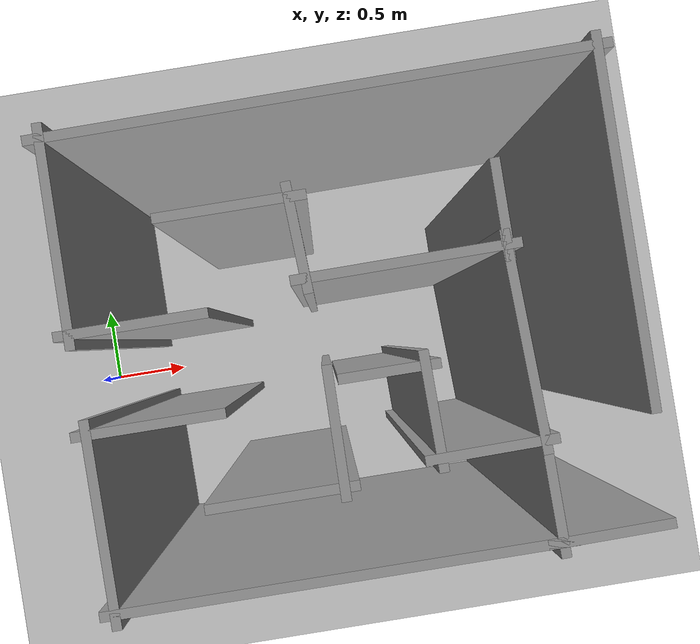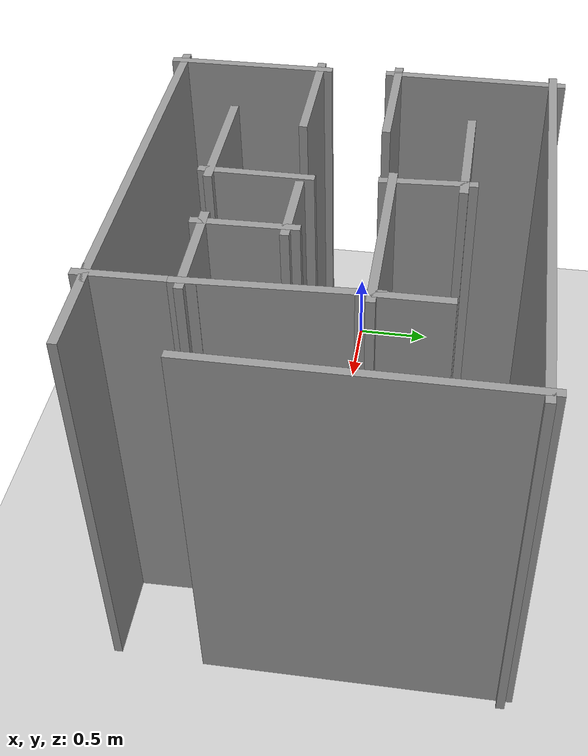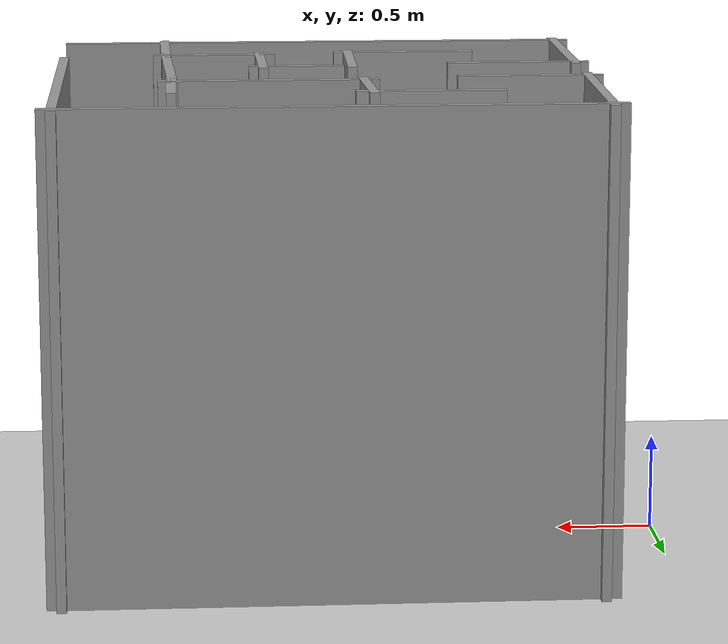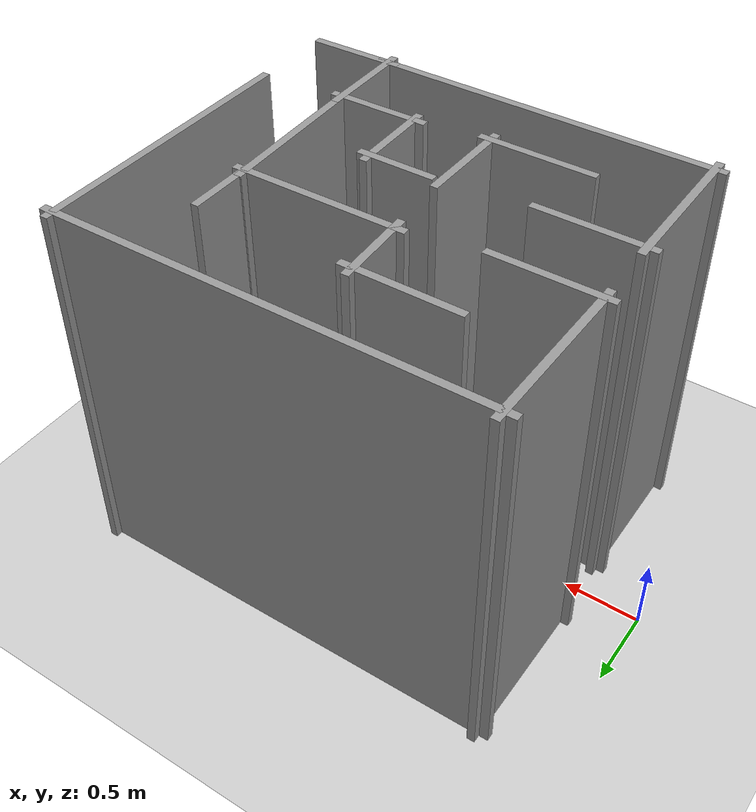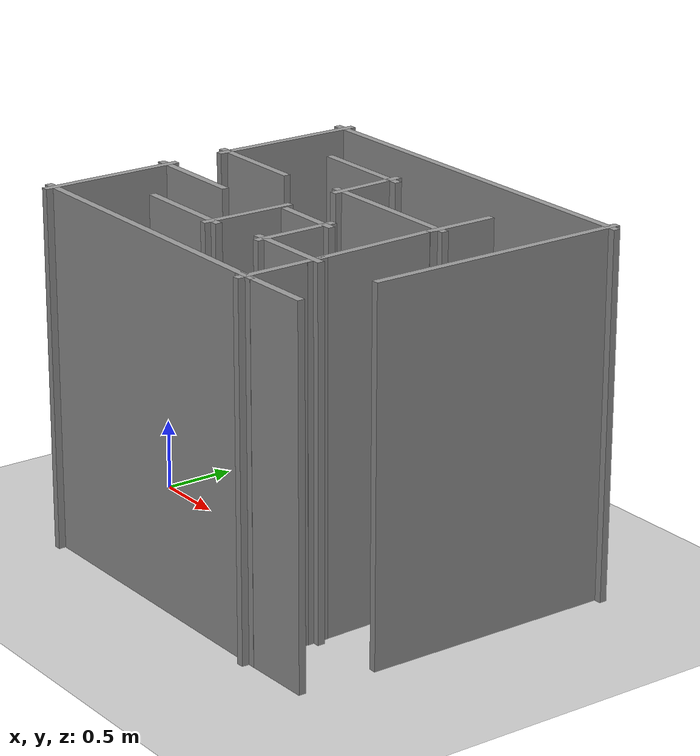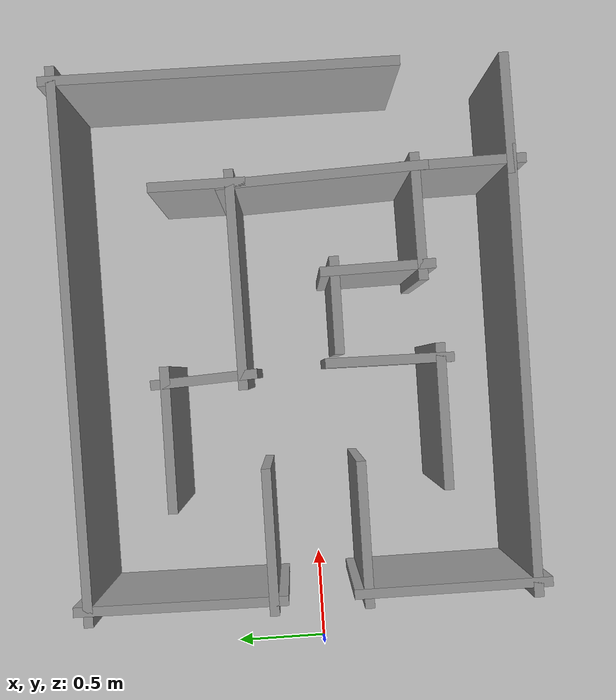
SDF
<sdf version="1.7">
 <world name="default">
  <scene><ambient>0.4 0.4 0.4 1</ambient><background>0.7 0.7 0.7 1</background><shadows>1</shadows></scene>
  <light name="sun" type="directional">
   <pose>0 0 10 0 -0 0</pose>
   <diffuse>0.8 0.8 0.8 1</diffuse>
   <specular>0.2 0.2 0.2 1</specular>
   <attenuation>
    <range>1000</range>
    <constant>0.9</constant>
    <linear>0.01</linear>
    <quadratic>0.001</quadratic>
   </attenuation>
   <direction>-0.5 0.1 -0.9</direction>
   <spot><inner_angle>0</inner_angle><outer_angle>0</outer_angle><falloff>0</falloff></spot>
  </light>
  <model name="ground_plane">
   <static>1</static>
   <link name="link">
    <collision name="collision">
     <geometry><plane><normal>0 0 1</normal><size>100 100</size></plane></geometry>
     <surface>
      <contact><collide_bitmask>65535</collide_bitmask></contact>
      <friction><ode><mu>100</mu><mu2>50</mu2></ode></friction>
     </surface>
    </collision>
    <visual name="visual">
     <cast_shadows>0</cast_shadows>
     <geometry><plane><normal>0 0 1</normal><size>100 100</size></plane></geometry>
     <material>
      <script><uri>file://media/materials/scripts/gazebo.material</uri><name>Gazebo/Grey</name></script>
     </material>
    </visual>
   </link>
  </model>
  <physics type="ode">
   <real_time_update_rate>1000</real_time_update_rate>
   <max_step_size>0.001</max_step_size>
   <real_time_factor>1</real_time_factor>
   <ode>
    <solver>
     <type>quick</type>
     <iters>150</iters>
     <precon_iters>0</precon_iters>
     <sor>1.4</sor>
     <use_dynamic_moi_rescaling>1</use_dynamic_moi_rescaling>
    </solver>
    <constraints>
     <cfm>1e-05</cfm>
     <erp>0.2</erp>
     <contact_max_correcting_vel>2000</contact_max_correcting_vel>
     <contact_surface_layer>0.01</contact_surface_layer>
    </constraints>
   </ode>
  </physics>
  <gravity>0 0 -9.8</gravity>
  <magnetic_field>6e-06 2.3e-05 -4.2e-05</magnetic_field>
  <atmosphere type="adiabatic"/>
  <spherical_coordinates>
   <surface_model>EARTH_WGS84</surface_model>
   <latitude_deg>0</latitude_deg>
   <longitude_deg>0</longitude_deg>
   <elevation>0</elevation>
   <heading_deg>0</heading_deg>
  </spherical_coordinates>
  <model name="Labyrinthe">
   <pose>1.44414 0.063318 0 0 -0 0</pose>
   <link name="Wall_44">
    <collision name="Wall_44_Collision">
     <geometry><box><size>0.75 0.05 2.5</size></box></geometry>
     <pose>0 0 1.25 0 -0 0</pose>
    </collision>
    <visual name="Wall_44_Visual">
     <pose>0 0 1.25 0 -0 0</pose>
     <geometry><box><size>0.75 0.05 2.5</size></box></geometry>
     <material>
      <script><uri>file://media/materials/scripts/gazebo.material</uri><name>Gazebo/Grey</name></script>
      <ambient>1 1 1 1</ambient>
     </material>
     <meta><layer>0</layer></meta>
    </visual>
    <pose>-0.18283 0.672913 0 0 -0 0</pose>
   </link>
   <link name="Wall_45">
    <collision name="Wall_45_Collision">
     <geometry><box><size>0.546517 0.05 2.5</size></box></geometry>
     <pose>0 0 1.25 0 -0 0</pose>
    </collision>
    <visual name="Wall_45_Visual">
     <pose>0 0 1.25 0 -0 0</pose>
     <geometry><box><size>0.546517 0.05 2.5</size></box></geometry>
     <material>
      <script><uri>file://media/materials/scripts/gazebo.material</uri><name>Gazebo/Grey</name></script>
      <ambient>1 1 1 1</ambient>
     </material>
     <meta><layer>0</layer></meta>
    </visual>
    <pose>0.113882 0.4749 0 0 -0 -1.52103</pose>
   </link>
   <link name="Wall_49">
    <collision name="Wall_49_Collision">
     <geometry><box><size>1.12495 0.05 2.5</size></box></geometry>
     <pose>0 0 1.25 0 -0 0</pose>
    </collision>
    <visual name="Wall_49_Visual">
     <pose>0 0 1.25 0 -0 0</pose>
     <geometry><box><size>1.12495 0.05 2.5</size></box></geometry>
     <material>
      <script><uri>file://media/materials/scripts/gazebo.material</uri><name>Gazebo/Grey</name></script>
      <ambient>1 1 1 1</ambient>
     </material>
     <meta><layer>0</layer></meta>
    </visual>
    <pose>0.611209 0.280174 0 0 -0 0.006744</pose>
   </link>
   <link name="Wall_50">
    <collision name="Wall_50_Collision">
     <geometry><box><size>1.09263 0.05 2.5</size></box></geometry>
     <pose>0 0 1.25 0 -0 0</pose>
    </collision>
    <visual name="Wall_50_Visual">
     <pose>0 0 1.25 0 -0 0</pose>
     <geometry><box><size>1.09263 0.05 2.5</size></box></geometry>
     <material>
      <script><uri>file://media/materials/scripts/gazebo.material</uri><name>Gazebo/Grey</name></script>
      <ambient>1 1 1 1</ambient>
     </material>
     <meta><layer>0</layer></meta>
    </visual>
    <pose>1.11511 -0.187564 0 0 -0 -1.53591</pose>
   </link>
   <link name="Wall_51">
    <collision name="Wall_51_Collision">
     <geometry><box><size>0.651272 0.05 2.5</size></box></geometry>
     <pose>0 0 1.25 0 -0 0</pose>
    </collision>
    <visual name="Wall_51_Visual">
     <pose>0 0 1.25 0 -0 0</pose>
     <geometry><box><size>0.651272 0.05 2.5</size></box></geometry>
     <material>
      <script><uri>file://media/materials/scripts/gazebo.material</uri><name>Gazebo/Grey</name></script>
      <ambient>1 1 1 1</ambient>
     </material>
     <meta><layer>0</layer></meta>
    </visual>
    <pose>0.874359 -0.668453 0 0 -0 -3.12847</pose>
   </link>
   <link name="Wall_52">
    <collision name="Wall_52_Collision">
     <geometry><box><size>0.592101 0.05 2.5</size></box></geometry>
     <pose>0 0 1.25 0 -0 0</pose>
    </collision>
    <visual name="Wall_52_Visual">
     <pose>0 0 1.25 0 -0 0</pose>
     <geometry><box><size>0.592101 0.05 2.5</size></box></geometry>
     <material>
      <script><uri>file://media/materials/scripts/gazebo.material</uri><name>Gazebo/Grey</name></script>
      <ambient>1 1 1 1</ambient>
     </material>
     <meta><layer>0</layer></meta>
    </visual>
    <pose>0.627033 -0.444139 0 0 -0 1.58567</pose>
   </link>
   <link name="Wall_53">
    <collision name="Wall_53_Collision">
     <geometry><box><size>0.5 0.05 2.5</size></box></geometry>
     <pose>0 0 1.25 0 -0 0</pose>
    </collision>
    <visual name="Wall_53_Visual">
     <pose>0 0 1.25 0 -0 0</pose>
     <geometry><box><size>0.5 0.05 2.5</size></box></geometry>
     <material>
      <script><uri>file://media/materials/scripts/gazebo.material</uri><name>Gazebo/Grey</name></script>
      <ambient>1 1 1 1</ambient>
     </material>
     <meta><layer>0</layer></meta>
    </visual>
    <pose>0.448745 -0.223113 0 0 -0 3.14159</pose>
   </link>
   <link name="Wall_56">
    <collision name="Wall_56_Collision">
     <geometry><box><size>0.657543 0.05 2.5</size></box></geometry>
     <pose>0 0 1.25 0 -0 0</pose>
    </collision>
    <visual name="Wall_56_Visual">
     <pose>0 0 1.25 0 -0 0</pose>
     <geometry><box><size>0.657543 0.05 2.5</size></box></geometry>
     <material>
      <script><uri>file://media/materials/scripts/gazebo.material</uri><name>Gazebo/Grey</name></script>
      <ambient>1 1 1 1</ambient>
     </material>
     <meta><layer>0</layer></meta>
    </visual>
    <pose>0.15369 -0.474554 0 0 -0 1.56044</pose>
   </link>
   <link name="Wall_58">
    <collision name="Wall_58_Collision">
     <geometry><box><size>0.75 0.05 2.5</size></box></geometry>
     <pose>0 0 1.25 0 -0 0</pose>
    </collision>
    <visual name="Wall_58_Visual">
     <pose>0 0 1.25 0 -0 0</pose>
     <geometry><box><size>0.75 0.05 2.5</size></box></geometry>
     <material>
      <script><uri>file://media/materials/scripts/gazebo.material</uri><name>Gazebo/Grey</name></script>
      <ambient>1 1 1 1</ambient>
     </material>
     <meta><layer>0</layer></meta>
    </visual>
    <pose>-0.148938 -0.734887 0 0 -0 3.14159</pose>
   </link>
   <link name="Wall_62">
    <collision name="Wall_62_Collision">
     <geometry><box><size>0.5 0.05 2.5</size></box></geometry>
     <pose>0 0 1.25 0 -0 0</pose>
    </collision>
    <visual name="Wall_62_Visual">
     <pose>0 0 1.25 0 -0 0</pose>
     <geometry><box><size>0.5 0.05 2.5</size></box></geometry>
     <material>
      <script><uri>file://media/materials/scripts/gazebo.material</uri><name>Gazebo/Grey</name></script>
      <ambient>1 1 1 1</ambient>
     </material>
     <meta><layer>0</layer></meta>
    </visual>
    <pose>1.10525 0.451887 0 0 -0 1.5708</pose>
   </link>
   <link name="Wall_64">
    <collision name="Wall_64_Collision">
     <geometry><box><size>0.648486 0.05 2.5</size></box></geometry>
     <pose>0 0 1.25 0 -0 0</pose>
    </collision>
    <visual name="Wall_64_Visual">
     <pose>0 0 1.25 0 -0 0</pose>
     <geometry><box><size>0.648486 0.05 2.5</size></box></geometry>
     <material>
      <script><uri>file://media/materials/scripts/gazebo.material</uri><name>Gazebo/Grey</name></script>
      <ambient>1 1 1 1</ambient>
     </material>
     <meta><layer>0</layer></meta>
    </visual>
    <pose>1.13467 -0.907814 0 0 -0 -1.55828</pose>
   </link>
   <link name="Wall_66">
    <collision name="Wall_66_Collision">
     <geometry><box><size>1.84864 0.05 2.5</size></box></geometry>
     <pose>0 0 1.25 0 -0 0</pose>
    </collision>
    <visual name="Wall_66_Visual">
     <pose>0 0 1.25 0 -0 0</pose>
     <geometry><box><size>1.84864 0.05 2.5</size></box></geometry>
     <material>
      <script><uri>file://media/materials/scripts/gazebo.material</uri><name>Gazebo/Grey</name></script>
      <ambient>1 1 1 1</ambient>
     </material>
     <meta><layer>0</layer></meta>
    </visual>
    <pose>1.67475 0.301653 0 0 -0 -1.57467</pose>
   </link>
   <link name="Wall_68">
    <collision name="Wall_68_Collision">
     <geometry><box><size>0.616883 0.05 2.5</size></box></geometry>
     <pose>0 0 1.25 0 -0 0</pose>
    </collision>
    <visual name="Wall_68_Visual">
     <pose>0 0 1.25 0 -0 0</pose>
     <geometry><box><size>0.616883 0.05 2.5</size></box></geometry>
     <material>
      <script><uri>file://media/materials/scripts/gazebo.material</uri><name>Gazebo/Grey</name></script>
      <ambient>1 1 1 1</ambient>
     </material>
     <meta><layer>0</layer></meta>
    </visual>
    <pose>1.37121 -1.15375 0 0 -0 0.014084</pose>
   </link>
   <link name="Wall_75">
    <collision name="Wall_75_Collision">
     <geometry><box><size>2.30937 0.05 2.5</size></box></geometry>
     <pose>0 0 1.25 0 -0 0</pose>
    </collision>
    <visual name="Wall_75_Visual">
     <pose>0 0 1.25 0 -0 0</pose>
     <geometry><box><size>2.30937 0.05 2.5</size></box></geometry>
     <material>
      <script><uri>file://media/materials/scripts/gazebo.material</uri><name>Gazebo/Grey</name></script>
      <ambient>1 1 1 1</ambient>
     </material>
     <meta><layer>0</layer></meta>
    </visual>
    <pose>0.058105 -1.15698 0 0 -0 -5e-05</pose>
   </link>
   <link name="Wall_81">
    <collision name="Wall_81_Collision">
     <geometry><box><size>2.86185 0.05 2.5</size></box></geometry>
     <pose>0 0 1.25 0 -0 0</pose>
    </collision>
    <visual name="Wall_81_Visual">
     <pose>0 0 1.25 0 -0 0</pose>
     <geometry><box><size>2.86185 0.05 2.5</size></box></geometry>
     <material>
      <script><uri>file://media/materials/scripts/gazebo.material</uri><name>Gazebo/Grey</name></script>
      <ambient>1 1 1 1</ambient>
     </material>
     <meta><layer>0</layer></meta>
    </visual>
    <pose>0.322147 1.14768 0 0 -0 -3.13432</pose>
   </link>
   <link name="Wall_82">
    <collision name="Wall_82_Collision">
     <geometry><box><size>1.09883 0.05 2.5</size></box></geometry>
     <pose>0 0 1.25 0 -0 0</pose>
    </collision>
    <visual name="Wall_82_Visual">
     <pose>0 0 1.25 0 -0 0</pose>
     <geometry><box><size>1.09883 0.05 2.5</size></box></geometry>
     <material>
      <script><uri>file://media/materials/scripts/gazebo.material</uri><name>Gazebo/Grey</name></script>
      <ambient>1 1 1 1</ambient>
     </material>
     <meta><layer>0</layer></meta>
    </visual>
    <pose>-1.03045 0.663503 0 0 -0 -1.57773</pose>
   </link>
   <link name="Wall_83">
    <collision name="Wall_83_Collision">
     <geometry><box><size>0.75 0.05 2.5</size></box></geometry>
     <pose>0 0 1.25 0 -0 0</pose>
    </collision>
    <visual name="Wall_83_Visual">
     <pose>0 0 1.25 0 -0 0</pose>
     <geometry><box><size>0.75 0.05 2.5</size></box></geometry>
     <material>
      <script><uri>file://media/materials/scripts/gazebo.material</uri><name>Gazebo/Grey</name></script>
      <ambient>1 1 1 1</ambient>
     </material>
     <meta><layer>0</layer></meta>
    </visual>
    <pose>-0.733742 0.189189 0 0 -0 0</pose>
   </link>
   <link name="Wall_86">
    <collision name="Wall_86_Collision">
     <geometry><box><size>1.01141 0.05 2.5</size></box></geometry>
     <pose>0 0 1.25 0 -0 0</pose>
    </collision>
    <visual name="Wall_86_Visual">
     <pose>0 0 1.25 0 -0 0</pose>
     <geometry><box><size>1.01141 0.05 2.5</size></box></geometry>
     <material>
      <script><uri>file://media/materials/scripts/gazebo.material</uri><name>Gazebo/Grey</name></script>
      <ambient>1 1 1 1</ambient>
     </material>
     <meta><layer>0</layer></meta>
    </visual>
    <pose>-1.02351 -0.72631 0 0 -0 1.57528</pose>
   </link>
   <link name="Wall_88">
    <collision name="Wall_88_Collision">
     <geometry><box><size>0.75 0.05 2.5</size></box></geometry>
     <pose>0 0 1.25 0 -0 0</pose>
    </collision>
    <visual name="Wall_88_Visual">
     <pose>0 0 1.25 0 -0 0</pose>
     <geometry><box><size>0.75 0.05 2.5</size></box></geometry>
     <material>
      <script><uri>file://media/materials/scripts/gazebo.material</uri><name>Gazebo/Grey</name></script>
      <ambient>1 1 1 1</ambient>
     </material>
     <meta><layer>0</layer></meta>
    </visual>
    <pose>-0.725438 -0.295691 0 0 -0 0</pose>
   </link>
   <static>1</static>
  </model>
 </world>
</sdf>
